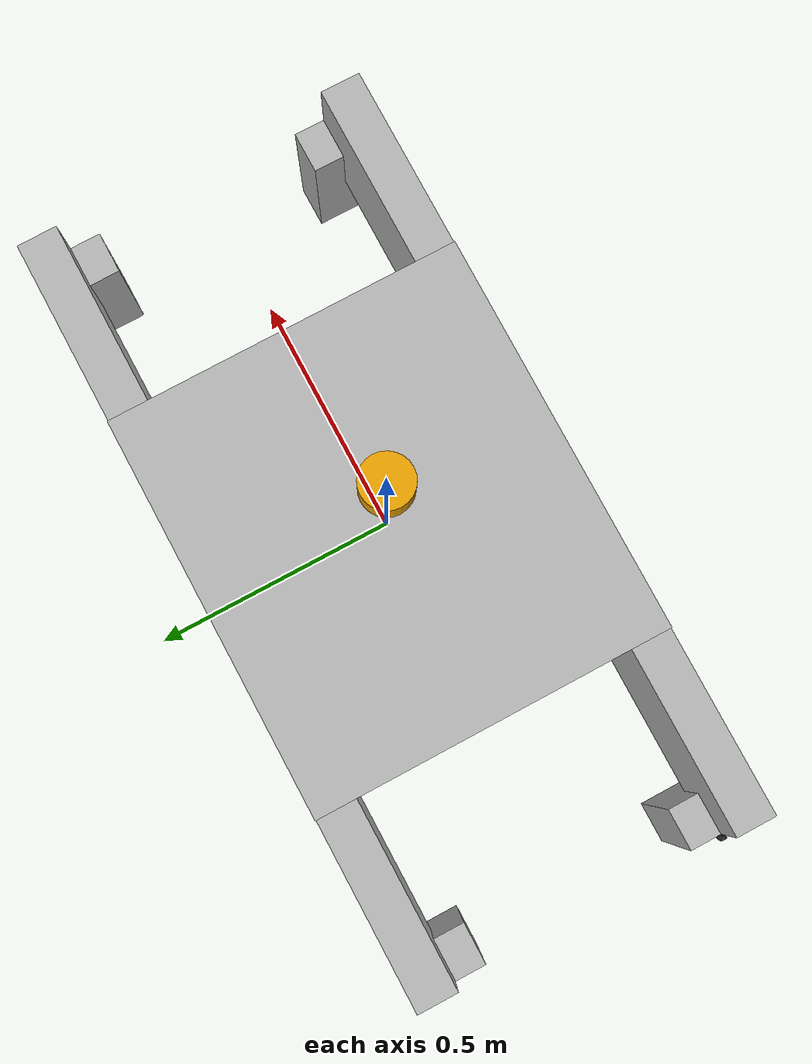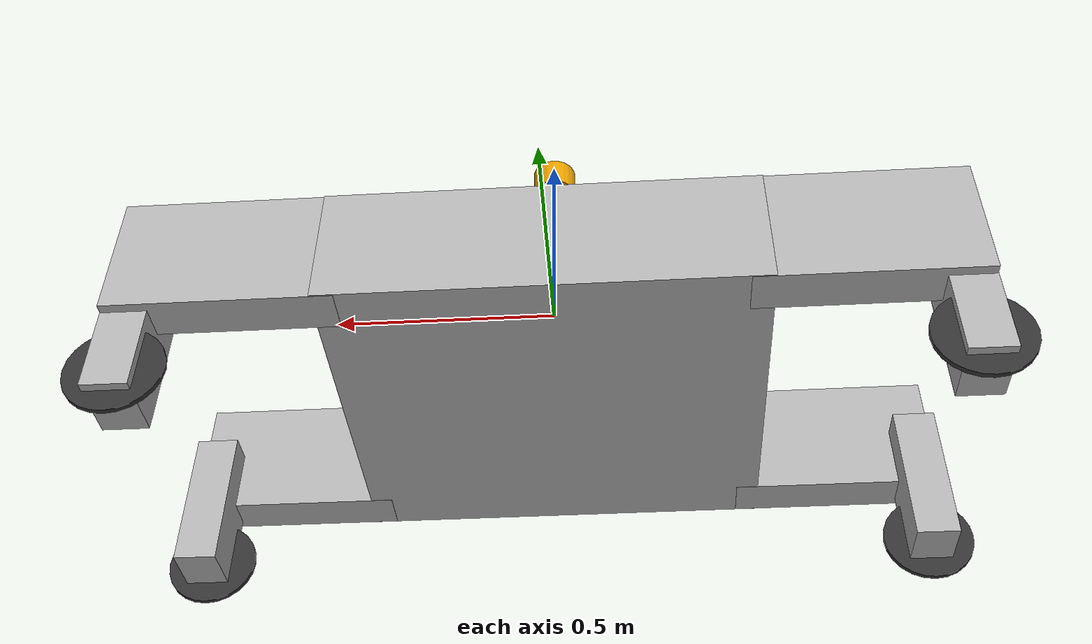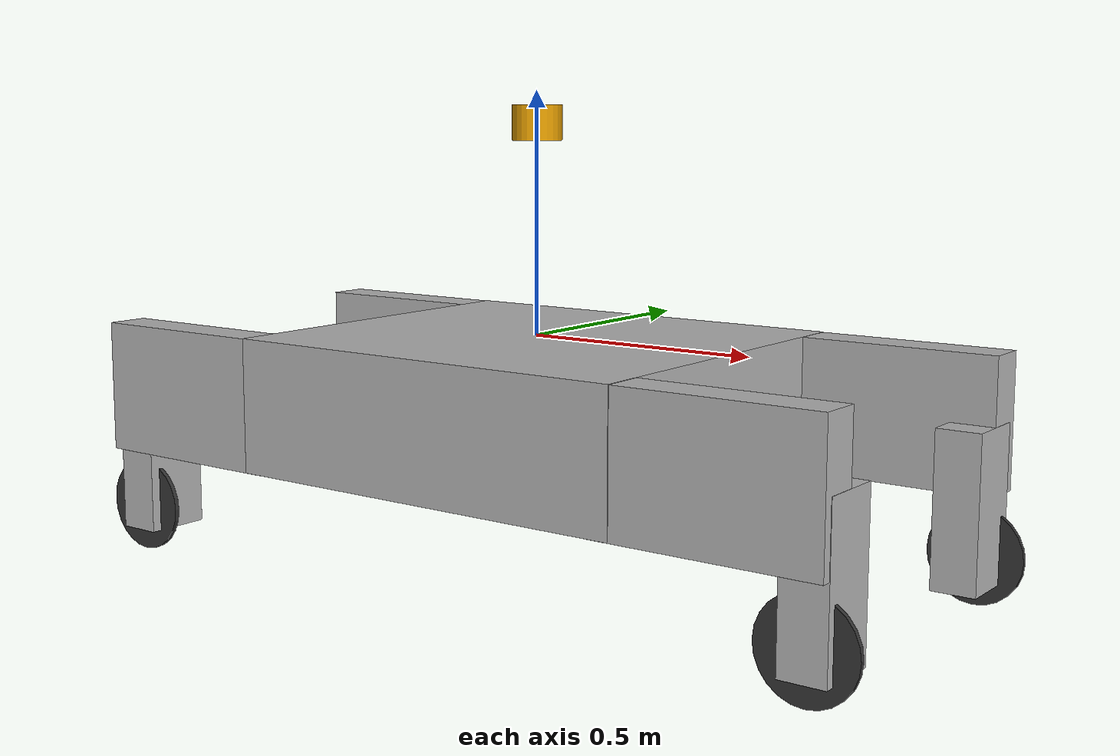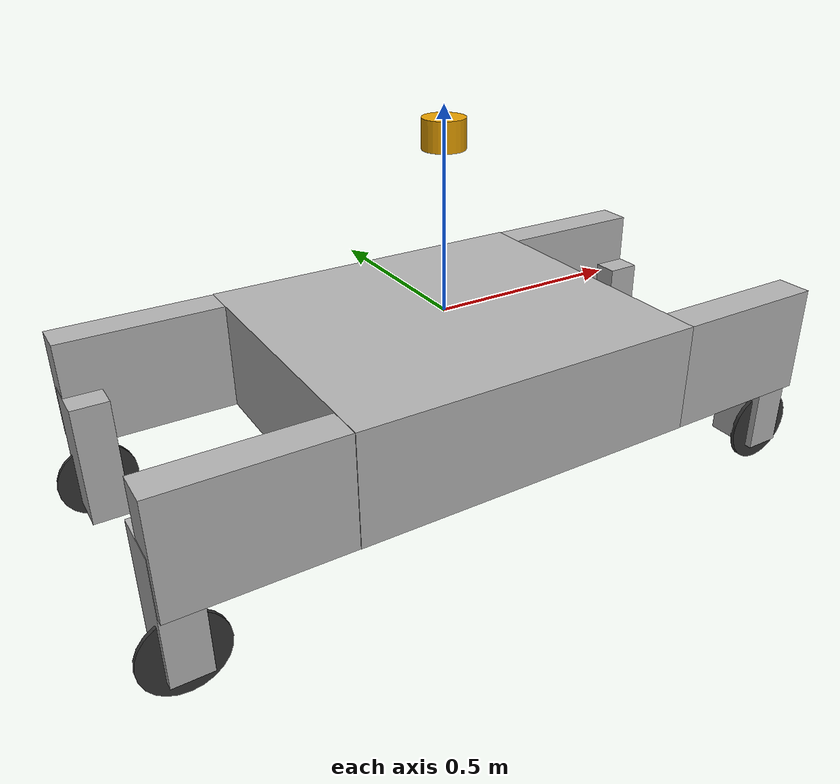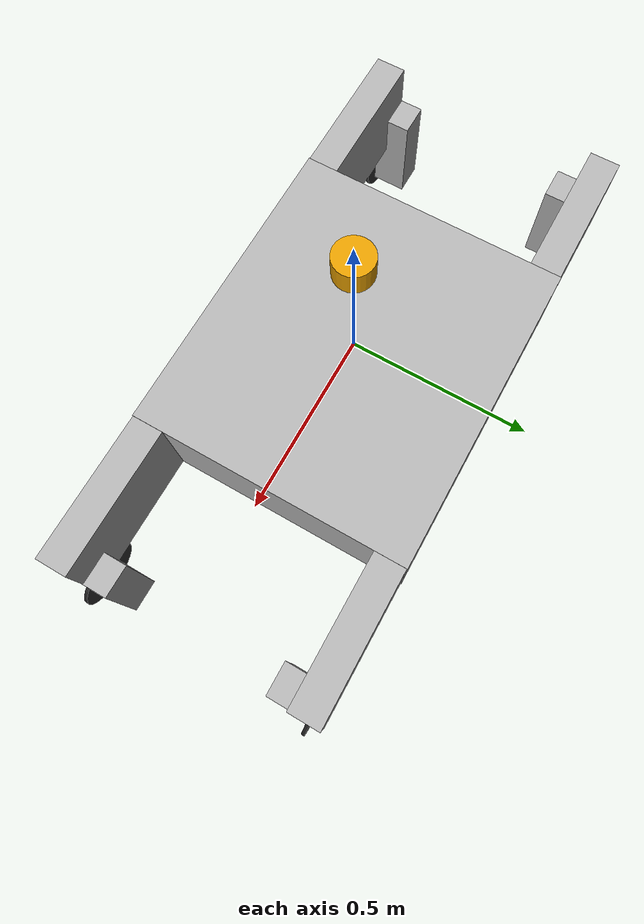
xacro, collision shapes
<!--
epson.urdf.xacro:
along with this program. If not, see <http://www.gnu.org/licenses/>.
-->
<?xml version="1.0"?>
<robot xmlns:xacro="http://www.ros.org/wiki/xacro" name="swerve">
<xacro:include filename="$(find swerve_description)/urdf/include/velodyne_lidar.xacro"/>
<xacro:include filename="$(find swerve_description)/urdf/include/epson.urdf.xacro"/>

<xacro:property name="brakes_fixed" value="true"/>

<!-- Add joint friction? -->
  <material name="white">
    <color rgba="0.7 0.7 0.7 1"/>
  </material>
  <material name="black">
    <color rgba="0.2 0.2 0.2 1"/>
  </material>

  <link name="base_link">
  </link>

  <xacro:epson name="imu" parent="base_link" update_rate="400" ns="sensors" frame_id="imu_link" topic_name="/sensors/imu">
      <origin xyz="0.24875 0.0 -0.2" rpy="${0/180*pi} ${0/180*pi} ${90/180*pi}"/> <!-- not calibrated properly-->
  </xacro:epson>

  <link name="mabi_attachment">
  </link>
  <joint name="base_link_to_mabi_attachment" type="fixed">
    <parent link="base_link"/>
    <child link="mabi_attachment"/>
    <origin xyz="0 0 -0.0" rpy="0 0 1.570796"/>
  </joint>

  <link name="body">
    <visual>
      <origin rpy="0 0 0" xyz="0 0 0"/>
      <geometry>
        <mesh filename="package://swerve_description/meshes/body.stl" scale="0.001 0.001 0.001"/>
      </geometry>
      <material name="white"/>
    </visual>
    <collision>
      <geometry>
        <box size="0.902 0.800 0.280"/>
      </geometry>
    </collision>
    <inertial>
      <mass value="31.90123643"/>
      <origin xyz="0.000000562323 0 -0.003378692933"/>
      <inertia ixx="3.238567971" ixy="-0.0001169154562" ixz="-0.000000014560378" iyy="3.455603445" iyz="0.0005658238908" izz="6.052079931"/>
    </inertial>
  </link>
  <joint name="base_link_to_body" type="fixed">
    <parent link="base_link"/>
    <child link="body"/>
    <origin xyz="0 0 -0.140"/>
  </joint>

  <link name="arm_rl">
    <visual>
      <origin rpy="${pi} 0 ${3.0*pi/2.0}" xyz="0 0 0"/>
      <geometry>
        <mesh filename="package://swerve_description/meshes/arm_rl.stl" scale="0.001 0.001 0.001"/>
      </geometry>
      <material name="white"/>
    </visual>
    <collision>
      <origin rpy="${pi} 0 ${3.0*pi/2.0}" xyz="0.0 0.232 0.130"/>
      <geometry>
        <box size="0.464 0.090 0.280"/>
      </geometry>
    </collision>
    <inertial>
      <mass value="4.680353119"/>
      <origin xyz="-0.2874248231 -0.000025732551 -0.1327515781"/>
      <inertia ixx="0.03793414031" ixy="0.000004904354526" ixz="-0.003907344591" iyy="0.1401583096" iyz="-0.00001817130601" izz="0.1060310134"/>
    </inertial>
  </link>
  <xacro:if value="${brakes_fixed}">
    <joint name="left_back_brake_joint" type="fixed">
      <parent link="body"/>
      <child link="arm_rl"/>
      <origin rpy="${pi} 0 ${3.0*pi/2.0}" xyz="-0.4031 0.353 0.1295"/>
    </joint>
  </xacro:if>
  <xacro:unless value="${brakes_fixed}">
    <joint name="left_back_brake_joint" type="revolute">
      <parent link="body"/>
      <child link="arm_rl"/>
      <origin rpy="${pi} 0 ${3.0*pi/2.0}" xyz="-0.4031 0.353 0.1295"/>
      <axis xyz="0 0 1"/>
      <limit effort="200.0" lower="-1.571" upper="1.571" velocity="0.5"/>
      <safety_controller k_position="100" k_velocity="100" soft_lower_limit="-1.5" soft_upper_limit="1.5" />
      <joint_properties damping="1.0" friction="0.0"/>

    </joint>
    <transmission name="arm_rl_trans">
    <type>transmission_interface/SimpleTransmission</type>
    <actuator name="$arm_rl_brake">
      <mechanicalReduction>1</mechanicalReduction>
    </actuator>
    <joint name="left_back_brake_joint">
      <hardwareInterface>hardware_interface/VelocityJointInterface</hardwareInterface>
    </joint>
  </transmission>
  </xacro:unless>

  <link name="arm_rr">
    <visual>
      <origin rpy="${pi} 0 ${pi/2.0}" xyz="0 0 0"/>
      <geometry>
        <mesh filename="package://swerve_description/meshes/arm_rr.stl" scale="0.001 0.001 0.001"/>
      </geometry>
      <material name="white"/>
    </visual>
    <collision>
      <origin rpy="${pi} 0 ${pi/2.0}" xyz="0.0 -0.232 0.130"/>
      <geometry>
        <box size="0.464 0.090 0.280"/>
      </geometry>
    </collision>
    <inertial>
      <mass value="4.680353119"/>
      <origin xyz="-0.2874248231 0.000025732551 -0.1327515781"/>
      <inertia ixx="0.03793414031" ixy="-0.000004904354526" ixz="-0.003907344591" iyy="0.1401583096" iyz="-0.00001817130601" izz="0.1060310134"/>
    </inertial>
  </link>
  <xacro:if value="${brakes_fixed}">
    <joint name="right_back_brake_joint" type="fixed">
      <parent link="body"/>
      <child link="arm_rr"/>
      <origin rpy="${pi} 0 ${pi/2.0}" xyz="-0.4031 -0.353 0.1290"/>

    </joint>
  </xacro:if>
  <xacro:unless value="${brakes_fixed}">
    <joint name="right_back_brake_joint" type="revolute">
      <parent link="body"/>
      <child link="arm_rr"/>
      <origin rpy="${pi} 0 ${pi/2.0}" xyz="-0.4031 -0.353 0.1290"/>
      <axis xyz="0 0 1"/>
      <limit effort="200.0" lower="-1.571" upper="1.571" velocity="0.5"/>
      <safety_controller k_position="100" k_velocity="100" soft_lower_limit="-1.5" soft_upper_limit="1.5" />
      <joint_properties damping="1.0" friction="0.0"/>
    </joint>
      <transmission name="arm_rr_trans">
    <type>transmission_interface/SimpleTransmission</type>
    <actuator name="$arm_rr_brake">
      <mechanicalReduction>1</mechanicalReduction>
    </actuator>
    <joint name="right_back_brake_joint">
      <hardwareInterface>hardware_interface/VelocityJointInterface</hardwareInterface>
    </joint>
  </transmission>
  </xacro:unless>

  <link name="arm_fl">
    <visual>
      <origin rpy="${pi} 0 ${3.0*pi/2.0}" xyz="0 0 0"/>
      <geometry>
        <mesh filename="package://swerve_description/meshes/arm_fl.stl" scale="0.001 0.001 0.001"/>
      </geometry>
      <material name="white"/>
    </visual>
    <collision>
      <origin rpy="${pi} 0 ${3.0*pi/2.0}" xyz="0.0 -0.232 0.130"/>
      <geometry>
        <box size="0.464 0.090 0.280"/>
      </geometry>
    </collision>
    <inertial>
      <mass value="4.680353119"/>
      <origin xyz="0.2874248231 -0.000025732551 -0.1327515781"/>
      <inertia ixx="0.03793414031" ixy="0.000004904354526" ixz="0.003907344591" iyy="0.1401583096" iyz="0.00001817130601" izz="0.1060310134"/>
    </inertial>
  </link>
  <xacro:if value="${brakes_fixed}">
    <joint name="left_front_brake_joint" type="fixed">
      <parent link="body"/>
      <child link="arm_fl"/>
      <origin rpy="${pi} 0 ${3.0*pi/2.0}" xyz="0.4031 0.353 0.1295"/>

    </joint>
  </xacro:if>
  <xacro:unless value="${brakes_fixed}">
    <joint name="left_front_brake_joint" type="revolute">
      <parent link="body"/>
      <child link="arm_fl"/>
      <origin rpy="${pi} 0 ${3.0*pi/2.0}" xyz="0.4031 0.353 0.1295"/>
      <axis xyz="0 0 1"/>
      <limit effort="200.0" lower="-1.571" upper="1.571" velocity="0.5"/>
      <safety_controller k_position="100" k_velocity="100" soft_lower_limit="-1.5" soft_upper_limit="1.5" />
      <joint_properties damping="1.0" friction="0.0"/>
    </joint>
      <transmission name="arm_fl_trans">
    <type>transmission_interface/SimpleTransmission</type>
    <actuator name="$arm_fl_brake">
      <mechanicalReduction>1</mechanicalReduction>
    </actuator>
    <joint name="left_front_brake_joint">
      <hardwareInterface>hardware_interface/VelocityJointInterface</hardwareInterface>
    </joint>
  </transmission>
  </xacro:unless>

  <link name="arm_fr">
    <visual>
      <origin rpy="${pi} 0 ${pi/2.0}" xyz="0 0 0"/>
      <geometry>
        <mesh filename="package://swerve_description/meshes/arm_fr.stl" scale="0.001 0.001 0.001"/>
      </geometry>
      <material name="white"/>
    </visual>
    <collision>
      <origin rpy="${pi} 0 ${pi/2.0}" xyz="0.0 0.232 0.130"/>
      <geometry>
        <box size="0.464 0.090 0.280"/>
      </geometry>
    </collision>
    <inertial>
      <mass value="4.680353119"/>
      <origin xyz="0.2874248231 0.000025732551 -0.1327515781"/>
      <inertia ixx="0.03793414031" ixy="-0.000004904354526" ixz="0.003907344591" iyy="0.1401583096" iyz="0.00001817130601" izz="0.1060310134"/>
    </inertial>
  </link>
  <xacro:if value="${brakes_fixed}">
    <joint name="right_front_brake_joint" type="fixed">
      <parent link="body"/>
      <child link="arm_fr"/>
      <origin rpy="${pi} 0 ${pi/2.0}" xyz="0.4031 -0.353 0.1290"/>

    </joint>
  </xacro:if>
  <xacro:unless value="${brakes_fixed}">
    <joint name="right_front_brake_joint" type="revolute">
      <parent link="body"/>
      <child link="arm_fr"/>
      <origin rpy="${pi} 0 ${pi/2.0}" xyz="0.4031 -0.353 0.1290"/>
      <axis xyz="0 0 1"/>
      <limit effort="200.0" lower="-1.571" upper="1.571" velocity="0.5"/>
      <safety_controller k_position="100" k_velocity="100" soft_lower_limit="-1.5" soft_upper_limit="1.5" />
      <joint_properties damping="1.0" friction="0.0"/>
    </joint>
      <transmission name="arm_fr_trans">
    <type>transmission_interface/SimpleTransmission</type>
    <actuator name="$arm_fr_brake">
      <mechanicalReduction>1</mechanicalReduction>
    </actuator>
    <joint name="right_front_brake_joint">
      <hardwareInterface>hardware_interface/VelocityJointInterface</hardwareInterface>
    </joint>
  </transmission>
  </xacro:unless>

  <link name="leg_fl">
    <visual>
      <origin rpy="${pi} 0 ${pi}" xyz="0 0 0"/>
      <geometry>
        <mesh filename="package://swerve_description/meshes/leg_fl.stl" scale="0.001 0.001 0.001"/>
      </geometry>
      <material name="white"/>
    </visual>
    <collision>
      <origin rpy="${pi} 0 0" xyz="0 -0.045 0.166"/>
      <geometry>
        <box size="0.094 0.14 0.322"/>
      </geometry>
    </collision>
    <inertial>
      <mass value="2.953355758"/>
      <origin xyz="0.000025765612 -0.04067071313 -0.2120849525"/>
      <inertia ixx="0.02759751053" ixy="-0.000002760620178" ixz="-0.00000149396864" iyy="0.02582483119" iyz="0.006233490582" izz="0.005391981492"/>
    </inertial>
  </link>
  <joint name="left_front_steer_joint" type="revolute">
    <parent link="arm_fl"/>
    <child link="leg_fl"/>
    <origin rpy="0 0 ${pi/2.0}" xyz="0 -0.4181 0.1244"/>
    <axis xyz="0 0 1"/>
    <limit effort="20.0" lower="-3.341" upper="3.341" velocity="5.76"/>
    <safety_controller k_position="100" k_velocity="100" soft_lower_limit="-3.141" soft_upper_limit="3.141" />
    <joint_properties damping="1.0" friction="5.0"/>
  </joint>
  <transmission name="leg_fl_trans">
    <type>transmission_interface/SimpleTransmission</type>
    <actuator name="$leg_fl_steering">
      <mechanicalReduction>1</mechanicalReduction>
    </actuator>
    <joint name="left_front_steer_joint">
      <hardwareInterface>hardware_interface/VelocityJointInterface</hardwareInterface>
    </joint>
  </transmission>

  <link name="leg_fr">
    <visual>
      <origin rpy="${pi} 0 ${pi}" xyz="0 0 0"/>
      <geometry>
        <mesh filename="package://swerve_description/meshes/leg_fr.stl" scale="0.001 0.001 0.001"/>
      </geometry>
      <material name="white"/>
    </visual>
    <collision>
      <origin rpy="0 0 0" xyz="0 0.045 0.166"/>
      <geometry>
        <box size="0.094 0.14 0.322"/>
      </geometry>
    </collision>
    <inertial>
      <mass value="2.953355758"/>
      <origin xyz="0.000025765612 0.04067071313 -0.2120849525"/>
      <inertia ixx="0.02759751053" ixy="0.000002760620178" ixz="-0.00000149396864" iyy="0.02582483119" iyz="0.006233490582" izz="0.005391981492"/>
    </inertial>
  </link>
  <joint name="right_front_steer_joint" type="revolute">
    <parent link="arm_fr"/>
    <child link="leg_fr"/>
    <origin rpy="0 0 ${3.0*pi/2.0}" xyz="0 0.4181 0.1244"/>
    <axis xyz="0 0 1"/>
    <limit effort="20.0" lower="-3.341" upper="3.341" velocity="5.76"/>
    <safety_controller k_position="100" k_velocity="100" soft_lower_limit="-3.141" soft_upper_limit="3.141" />
    <joint_properties damping="1.0" friction="5.0"/>
  </joint>
  <transmission name="leg_fr_trans">
    <type>transmission_interface/SimpleTransmission</type>
    <actuator name="$leg_fr_steering">
      <mechanicalReduction>1</mechanicalReduction>
    </actuator>
    <joint name="right_front_steer_joint">
      <hardwareInterface>hardware_interface/VelocityJointInterface</hardwareInterface>
    </joint>
  </transmission>

  <link name="leg_rl">
    <visual>
      <origin rpy="${pi} 0 0" xyz="0 0 0"/>
      <geometry>
        <mesh filename="package://swerve_description/meshes/leg_rl.stl" scale="0.001 0.001 0.001"/>
      </geometry>
      <material name="white"/>
    </visual>
    <collision>
      <origin rpy="${pi} 0 0" xyz="0 0.045 0.166"/>
      <geometry>
        <box size="0.094 0.14 0.322"/>
      </geometry>
    </collision>
    <inertial>
      <mass value="2.953355758"/>
      <origin xyz="-0.000025765612 -0.04067071313 -0.2120849525"/>
      <inertia ixx="0.02759751053" ixy="-0.000002760620178" ixz="0.00000149396864" iyy="0.02582483119" iyz="-0.006233490582" izz="0.005391981492"/>
    </inertial>
  </link>
  <joint name="left_back_steer_joint" type="revolute">
    <parent link="arm_rl"/>
    <child link="leg_rl"/>
    <origin rpy="0 0 ${3.0*pi/2.0}" xyz="0 0.4181 0.1244"/>
    <axis xyz="0 0 1"/>
    <limit effort="20.0" lower="-3.341" upper="3.341" velocity="5.76"/>
    <safety_controller k_position="100" k_velocity="100" soft_lower_limit="-3.141" soft_upper_limit="3.141" />
    <joint_properties damping="1.0" friction="5.0"/>
  </joint>
  <transmission name="leg_rl_trans">
    <type>transmission_interface/SimpleTransmission</type>
    <actuator name="$leg_rl_steering">
      <mechanicalReduction>1</mechanicalReduction>
    </actuator>
    <joint name="left_back_steer_joint">
      <hardwareInterface>hardware_interface/VelocityJointInterface</hardwareInterface>
    </joint>
  </transmission>

  <link name="leg_rr">
    <visual>
      <origin rpy="0 ${pi} ${pi}" xyz="0 0 0"/>
      <geometry>
        <mesh filename="package://swerve_description/meshes/leg_rr.stl" scale="0.001 0.001 0.001"/>
      </geometry>
      <material name="white"/>
    </visual>
    <collision>
      <origin rpy="0 ${pi} ${pi}" xyz="0 -0.045 0.166"/>
      <geometry>
        <box size="0.094 0.14 0.322"/>
      </geometry>
    </collision>
    <inertial>
      <mass value="2.953355758"/>
      <origin xyz="-0.000025765612 0.04067071313 -0.2120849525"/>
      <inertia ixx="0.02759751053" ixy="0.000002760620178" ixz="0.00000149396864" iyy="0.02582483119" iyz="-0.006233490582" izz="0.005391981492"/>
    </inertial>
  </link>
  <joint name="right_back_steer_joint" type="revolute">
    <parent link="arm_rr"/>
    <child link="leg_rr"/>
    <origin rpy="0 0 ${pi/2.0}" xyz="0 -0.4181 0.1244"/>
    <axis xyz="0 0 1"/>
    <limit effort="20.0" lower="-3.341" upper="3.341" velocity="5.76"/>
    <safety_controller k_position="100" k_velocity="100" soft_lower_limit="-3.141" soft_upper_limit="3.141" />
    <joint_properties damping="1.0" friction="5.0"/>
  </joint>
  <transmission name="leg_rr_trans">
    <type>transmission_interface/SimpleTransmission</type>
    <actuator name="$leg_rr_steering">
      <mechanicalReduction>1</mechanicalReduction>
    </actuator>
    <joint name="right_back_steer_joint">
      <hardwareInterface>hardware_interface/VelocityJointInterface</hardwareInterface>
    </joint>
  </transmission>

  <link name="wheel_fl">
    <visual>
      <origin rpy="${pi/2.0} 0 0" xyz="0 0 0"/>
      <geometry>
        <mesh filename="package://swerve_description/meshes/wheel_fl.stl" scale="0.001 0.001 0.001"/>
      </geometry>
      <material name="black"/>
    </visual>
    <collision>
      <origin rpy="${pi} 0 0" xyz="0 -0.003 0"/>
      <geometry>
        <cylinder length="0.01" radius = "0.100"/>
      </geometry>
    </collision>
    <inertial>
      <mass value="1.434561237"/>
      <origin xyz="0 -0.003225753823 0"/>
      <inertia ixx="0.003762436739" ixy="0" ixz="0" iyy="0.007084970164" iyz="0" izz="0.003762596989"/>
    </inertial>
  </link>
  <joint name="left_front_wheel_joint" type="continuous">
    <parent link="leg_fl"/>
    <child link="wheel_fl"/>
    <origin rpy="${3.0*pi/2.0} ${pi/2.0} 0" xyz="0 0.0014 0.2746"/>
    <axis xyz="0 0 1"/>
    <limit effort="1000" velocity="11.52"/>
    <safety_controller k_position="100" k_velocity="100"/>
    <joint_properties damping="1.0" friction="5.0"/>
  </joint>
  <transmission name="wheel_fl_trans">
    <type>transmission_interface/SimpleTransmission</type>
    <actuator name="wheel_fl_drive">
      <mechanicalReduction>1</mechanicalReduction>
    </actuator>
    <joint name="left_front_wheel_joint">
      <hardwareInterface>hardware_interface/VelocityJointInterface</hardwareInterface>
    </joint>
  </transmission>
  <gazebo reference="wheel_fl">
    <mu1 value="0.7"/>
    <mu2 value="0.5"/>
    <kp value="300000.0" />
    <kd value="600.0" />
  </gazebo>

  <link name="wheel_fr">
    <visual>
      <origin rpy="${-pi/2.0} 0 0" xyz="0 0 0"/>
      <geometry>
        <mesh filename="package://swerve_description/meshes/wheel_fr.stl" scale="0.001 0.001 0.001"/>
      </geometry>
      <material name="black"/>
    </visual>
    <collision>
      <origin rpy="${pi} 0 0" xyz="0 0.003 0"/>
      <geometry>
        <cylinder length="0.01" radius = "0.100"/>
      </geometry>
    </collision>
    <inertial>
      <mass value="1.434561237"/>
      <origin xyz="0 0.003225753823 0"/>
      <inertia ixx="0.003762436739" ixy="0" ixz="0" iyy="0.007084970164" iyz="0" izz="0.003762596989"/>
    </inertial>
  </link>
  <joint name="right_front_wheel_joint" type="continuous">
    <parent link="leg_fr"/>
    <child link="wheel_fr"/>
    <origin rpy="${pi/2.0} ${pi/2.0} 0" xyz="0 -0.0013 0.2746"/>
    <axis xyz="0 0 1"/>
    <limit effort="1000" velocity="11.52"/>
    <safety_controller k_position="100" k_velocity="100"/>
    <joint_properties damping="1.0" friction="5.0"/>
  </joint>
  <transmission name="wheel_fr_trans">
    <type>transmission_interface/SimpleTransmission</type>
    <actuator name="wheel_fr_drive">
      <mechanicalReduction>1</mechanicalReduction>
    </actuator>
    <joint name="right_front_wheel_joint">
      <hardwareInterface>hardware_interface/VelocityJointInterface</hardwareInterface>
    </joint>
  </transmission>
  <gazebo reference="wheel_fr">
    <mu1 value="0.7"/>
    <mu2 value="0.5"/>
    <kp value="300000.0" />
    <kd value="600.0" />
  </gazebo>

  <link name="wheel_rl">
    <visual>
      <origin rpy="${pi/2.0} 0 0" xyz="0 0 0"/>
      <geometry>
        <mesh filename="package://swerve_description/meshes/wheel_rl.stl" scale="0.001 0.001 0.001"/>
      </geometry>
      <material name="black"/>
    </visual>
    <collision>
      <origin rpy="${pi} 0 0" xyz="0 0.003 0"/>
      <geometry>
        <cylinder length="0.01" radius = "0.100"/>
      </geometry>
    </collision>
    <inertial>
      <mass value="1.434561237"/>
      <origin xyz="0 -0.003225753823 0"/>
      <inertia ixx="0.003762436739" ixy="0" ixz="0" iyy="0.007084970164" iyz="0" izz="0.003762596989"/>
    </inertial>
  </link>
  <joint name="left_back_wheel_joint" type="continuous">
    <parent link="leg_rl"/>
    <child link="wheel_rl"/>
    <origin rpy="${pi/2} ${pi/2} 0" xyz="0 -0.0013 0.2746"/>
    <axis xyz="0 0 1"/>
    <limit effort="1000" velocity="11.52"/>
    <safety_controller k_position="100" k_velocity="100"/>
    <joint_properties damping="1.0" friction="5.0"/>
  </joint>
  <transmission name="wheel_rl_trans">
    <type>transmission_interface/SimpleTransmission</type>
    <actuator name="wheel_rl_drive">
      <mechanicalReduction>1</mechanicalReduction>
    </actuator>
    <joint name="left_back_wheel_joint">
      <hardwareInterface>hardware_interface/VelocityJointInterface</hardwareInterface>
    </joint>
  </transmission>
  <gazebo reference="wheel_rl">
    <mu1 value="0.7"/>
    <mu2 value="0.5"/>
    <kp value="300000.0" />
    <kd value="600.0" />
  </gazebo>

  <link name="wheel_rr">
    <visual>
      <origin rpy="${3.0*pi/2.0} 0 0" xyz="0 0 0"/>
      <geometry>
        <mesh filename="package://swerve_description/meshes/wheel_rr.stl" scale="0.001 0.001 0.001"/>
      </geometry>
      <material name="black"/>
    </visual>
    <collision>
      <origin rpy="${pi} 0 0" xyz="0 0.003 0"/>
      <geometry>
        <cylinder length="0.01" radius = "0.100"/>
      </geometry>
    </collision>
    <inertial>
      <mass value="1.434561237"/>
      <origin xyz="0 0.003225753823 0"/>
      <inertia ixx="0.003762436739" ixy="0" ixz="0" iyy="0.007084970164" iyz="0" izz="0.003762596989"/>
    </inertial>
  </link>
  <joint name="right_back_wheel_joint" type="continuous">
    <parent link="leg_rr"/>
    <child link="wheel_rr"/>
    <origin rpy="${3.0*pi/2.0} ${pi/2.0} 0" xyz="0 -0.0014 0.2746"/>
    <axis xyz="0 0 1"/>
    <limit effort="1000" velocity="11.52"/>
    <safety_controller k_position="100" k_velocity="100"/>
    <joint_properties damping="1.0" friction="5.0"/>
  </joint>
  <transmission name="wheel_rr_trans">
    <type>transmission_interface/SimpleTransmission</type>
    <actuator name="wheel_rr_drive">
      <mechanicalReduction>1</mechanicalReduction>
    </actuator>
    <joint name="right_back_wheel_joint">
      <hardwareInterface>hardware_interface/VelocityJointInterface</hardwareInterface>
    </joint>
  </transmission>
  <gazebo reference="wheel_rr">
    <mu1 value="0.7"/>
    <mu2 value="0.5"/>
    <kp value="300000.0" />
    <kd value="600.0" />
  </gazebo>

  <xacro:velodyne_lidar parent="base_link"/>

  <gazebo>
    <plugin name="gazebo_ros_control" filename="libgazebo_ros_control.so"/>
  </gazebo>

</robot>

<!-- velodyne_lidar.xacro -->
<robot xmlns:xacro="http://www.ros.org/wiki/xacro" name="example">
  <xacro:macro name="velodyne_lidar" params="parent">
    <xacro:arg name="gpu" default="false"/>
    <xacro:property name="gpu" value="$(arg gpu)" />
    <xacro:arg name="organize_cloud" default="false"/>
    <xacro:property name="organize_cloud" value="$(arg organize_cloud)" />
    <xacro:arg name="pointcloud_topic"	default="/velodyne_points"/>
    <xacro:property name="pointcloud_topic" value="$(arg pointcloud_topic)" />

    <xacro:include filename="$(find velodyne_description)/urdf/VLP-16.urdf.xacro"/>
    <xacro:VLP-16 parent="${parent}" name="velodyne" topic="${pointcloud_topic}" organize_cloud="${organize_cloud}" hz="10" samples="440" gpu="${gpu}">
      <origin xyz="0 0 0.4" rpy="0 0 0" />
    </xacro:VLP-16>
  </xacro:macro>
</robot>

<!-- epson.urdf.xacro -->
<!--Copyright (C) 2014 by Jerome Maye                                        -->
<!--jerome.maye@gmail.com                                                    -->
<!--This program is free software; you can redistribute it and/or modify     -->
<!--it under the terms of the Lesser GNU General Public License as published -->
<!--by the Free Software Foundation; either version 3 of the License, or     -->
<!--(at your option) any later version.                                      -->
<!--This program is distributed in the hope that it will be useful,          -->
<!--but WITHOUT ANY WARRANTY; without even the implied warranty of           -->
<!--MERCHANTABILITY or FITNESS FOR A PARTICULAR PURPOSE. See the             -->
<!--Lesser GNU General Public License for more details.                      -->
<!--You should have received a copy of the Lesser GNU General Public License -->

<!-- This file contains the description of an Epson M-G365PD IMU. -->

<robot xmlns:xacro="http://www.ros.org/wiki/xacro">

  <!-- Parameters -->
  <xacro:property name="l_imu" value="0.024"/>
  <xacro:property name="w_imu" value="0.024"/>
  <xacro:property name="h_imu" value="0.01"/>
  <xacro:property name="m_imu" value="0.01"/> <!-- [kg] -->
  <xacro:property name="mu_imu" value="0.8"/>

  <xacro:include filename="$(find swerve_description)/urdf/include/inertia_tensors.urdf.xacro"/>

  <!-- IMU description -->
  <xacro:macro name="epson_model" params="name parent *origin">
    <link name="${name}_link">
      <visual>
        <origin xyz="0 0 ${h_imu * 0.5}" rpy="0 0 0"/>
        <geometry>
          <box size="${l_imu} ${w_imu} ${h_imu}"/>
        </geometry>
        <material name="orange"/>
      </visual>
      <collision>
        <origin xyz="0 0 ${h_imu * 0.5}" rpy="0 0 0"/>
        <geometry>
          <box size="${l_imu} ${w_imu} ${h_imu}"/>
        </geometry>
      </collision>
      <xacro:inertial_cuboid m="${m_imu}" w="${l_imu}" h="${h_imu}"
        d="${w_imu}"/>
    </link>

    <joint name="${name}_joint" type="fixed">
      <parent link="${parent}"/>
      <child link="${name}_link"/>
      <xacro:insert_block name="origin"/>
    </joint>
  </xacro:macro>

  <!-- IMU Gazebo -->
  <xacro:macro name="epson" params="name parent update_rate ns frame_id
      topic_name *origin"> <!-- update_rate is not used -> Could be removed -->
    <xacro:epson_model name="${name}" parent="${parent}">
      <xacro:insert_block name="origin"/>
    </xacro:epson_model>

    <gazebo reference="${name}_link">
      <material>Gazebo/Orange</material>
      <mu1>${mu_imu}</mu1>
      <mu2>${mu_imu}</mu2>
    </gazebo>

    <gazebo reference="${name}_joint">
    </gazebo>

    <gazebo reference="${name}_link">
        <gravity>true</gravity>
        <sensor name="imu_sensor" type="imu">
          <always_on>true</always_on>
          <update_rate>400</update_rate>
          <visualize>true</visualize>
          <topic>__default_topic__</topic>
          <plugin filename="libgazebo_ros_imu_sensor.so" name="imu_plugin">
            <topicName>${topic_name}</topicName>
            <bodyName>${name}_link</bodyName>
            <updateRateHZ>400.0</updateRateHZ>
            <gaussianNoise>0.05</gaussianNoise>
            <xyzOffset>0 0 0</xyzOffset>
            <rpyOffset>0 0 0</rpyOffset>
            <frameName>${frame_id}</frameName>
            <initialOrientationAsReference>false</initialOrientationAsReference>
          </plugin>
          <pose>0 0 0 0 0 0</pose>
        </sensor>
      </gazebo>
  </xacro:macro>

</robot>

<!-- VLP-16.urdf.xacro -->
<robot xmlns:xacro="http://www.ros.org/wiki/xacro" name="VLP-16">
  <xacro:property name="M_PI" value="3.1415926535897931" />
  <xacro:macro name="VLP-16" params="*origin is_sim:=true parent:=base_link name:=velodyne tf_prefix:='' topic:=/velodyne_points organize_cloud:=false hz:=10 lasers:=16 samples:=1875 collision_range:=0.3 min_range:=0.0 max_range:=100.0 noise:=0.008 min_angle:=-${M_PI} max_angle:=${M_PI} gpu:=false">

    <joint name="${name}_base_mount_joint" type="fixed">
      <xacro:insert_block name="origin" />
      <parent link="${parent}"/>
      <child link="${name}_base_link"/>
    </joint>

    <link name="${name}_base_link">
      <inertial>
        <mass value="0.83"/>
        <origin xyz="0 0 0.03585"/>
        <inertia ixx="${(0.83 * (3.0*0.0516*0.0516 + 0.0717*0.0717)) / 12.0}" ixy="0" ixz="0"
          iyy="${(0.83 * (3.0*0.0516*0.0516 + 0.0717*0.0717)) / 12.0}" iyz="0"
          izz="${0.5 * 0.83 * (0.0516*0.0516)}"/>
      </inertial>
      <visual>
        <geometry>
          <mesh filename="package://velodyne_description/meshes/VLP16_base_1.dae" />
        </geometry>
      </visual>
      <visual>
        <geometry>
          <mesh filename="package://velodyne_description/meshes/VLP16_base_2.dae" />
        </geometry>
      </visual>
      <collision>
        <origin rpy="0 0 0" xyz="0 0 0.03585"/>
        <geometry>
          <cylinder radius="0.0516" length="0.0717"/>
        </geometry>
      </collision>
    </link>

    <joint name="${name}_base_scan_joint" type="fixed" >
      <origin xyz="0 0 0.0377" rpy="0 0 0" />
      <parent link="${name}_base_link" />
      <child link="${name}"/>
    </joint>

    <link name="${name}">
      <inertial>
        <mass value="0.01"/>
        <origin xyz="0 0 0"/>
        <inertia ixx="1e-7" ixy="0" ixz="0" iyy="1e-7" iyz="0" izz="1e-7"/>
      </inertial>
      <visual>
        <origin xyz="0 0 -0.0377" />
        <geometry>
          <mesh filename="package://velodyne_description/meshes/VLP16_scan.dae" />
        </geometry>
      </visual>
      <collision>
        <geometry>
          <sphere radius="0"/>
        </geometry>
      </collision>
    </link>

    <!-- Gazebo requires the velodyne_gazebo_plugins package -->
    <xacro:if value="${is_sim}">
        <gazebo reference="${name}">
            <xacro:if value="${gpu}">
                <sensor type="gpu_ray" name="${name}-VLP16">
                <pose>0 0 0 0 0 0</pose>
                <visualize>false</visualize>
                <update_rate>${hz}</update_rate>
                <ray>
                    <scan>
                    <horizontal>
                        <samples>${samples}</samples>
                        <resolution>1</resolution>
                        <min_angle>${min_angle}</min_angle>
                        <max_angle>${max_angle}</max_angle>
                    </horizontal>
                    <vertical>
                        <samples>${lasers}</samples>
                        <resolution>1</resolution>
                        <min_angle>-${15.0*M_PI/180.0}</min_angle>
                        <max_angle> ${15.0*M_PI/180.0}</max_angle>
                    </vertical>
                    </scan>
                    <range>
                    <min>${collision_range}</min>
                    <max>${max_range+1}</max>
                    <resolution>0.001</resolution>
                    </range>
                    <noise>
                    <type>gaussian</type>
                    <mean>0.0</mean>
                    <stddev>0.0</stddev>
                    </noise>
                </ray>
                <plugin name="gazebo_ros_laser_controller" filename="libgazebo_ros_velodyne_laser.so">
                    <ros>
                    <namespace>/${name}</namespace>
                    <remapping>~/out:=${topic}</remapping>
                    </ros>
                    <tf_prefix>${tf_prefix}</tf_prefix>
                    <frame_name>${name}</frame_name>
                    <organize_cloud>${organize_cloud}</organize_cloud>
                    <min_range>${min_range}</min_range>
                    <max_range>${max_range}</max_range>
                    <gaussian_noise>${noise}</gaussian_noise>
                </plugin>
                </sensor>
            </xacro:if>
            <xacro:unless value="${gpu}">
                <sensor type="ray" name="${name}-VLP16">
                <pose>0 0 0 0 0 0</pose>
                <visualize>false</visualize>
                <update_rate>${hz}</update_rate>
                <ray>
                    <scan>
                    <horizontal>
                        <samples>${samples}</samples>
                        <resolution>1</resolution>
                        <min_angle>${min_angle}</min_angle>
                        <max_angle>${max_angle}</max_angle>
                    </horizontal>
                    <vertical>
                        <samples>${lasers}</samples>
                        <resolution>1</resolution>
                        <min_angle>-${15.0*M_PI/180.0}</min_angle>
                        <max_angle> ${15.0*M_PI/180.0}</max_angle>
                    </vertical>
                    </scan>
                    <range>
                    <min>${collision_range}</min>
                    <max>${max_range+1}</max>
                    <resolution>0.001</resolution>
                    </range>
                    <noise>
                    <type>gaussian</type>
                    <mean>0.0</mean>
                    <stddev>0.0</stddev>
                    </noise>
                </ray>
                <plugin name="gazebo_ros_laser_controller" filename="libgazebo_ros_velodyne_laser.so">
                    <ros>
                    <namespace>/${name}</namespace>
                    <remapping>~/out:=${topic}</remapping>
                    </ros>
                    <tf_prefix>${tf_prefix}</tf_prefix>
                    <frame_name>${name}</frame_name>
                    <organize_cloud>${organize_cloud}</organize_cloud>
                    <min_range>${min_range}</min_range>
                    <max_range>${max_range}</max_range>
                    <gaussian_noise>${noise}</gaussian_noise>
                </plugin>
                </sensor>
            </xacro:unless>
        </gazebo>
    </xacro:if>

  </xacro:macro>
</robot>
